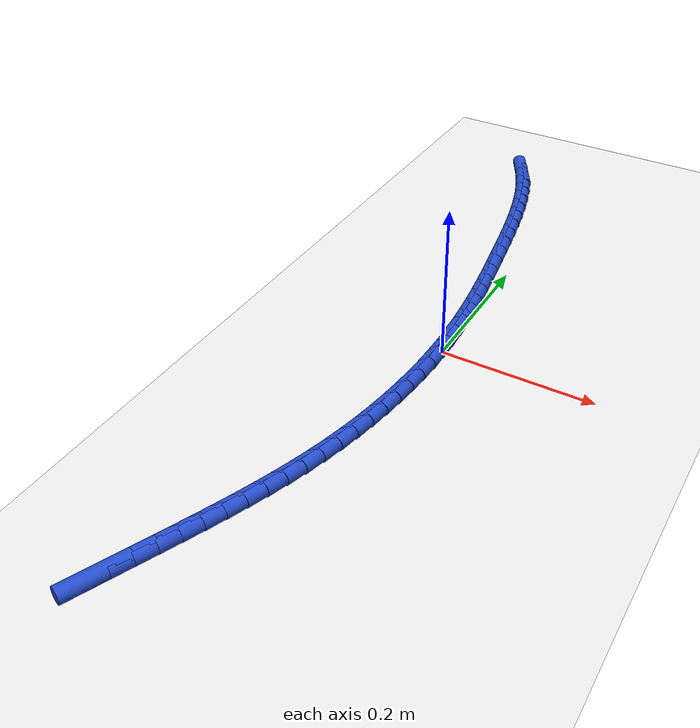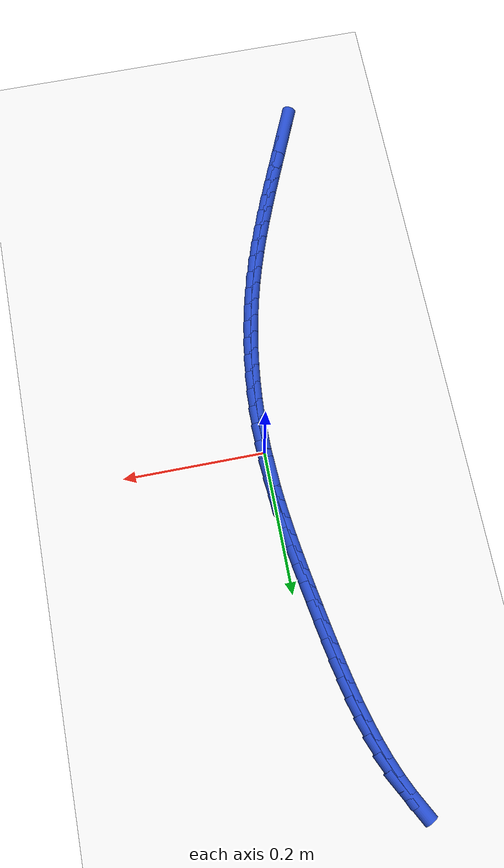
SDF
<sdf version="1.6">
 <world name="default">
  <model name="ground_plane">
   <static>1</static>
   <link name="link">
    <collision name="collision">
     <geometry><plane><normal>0 0 1</normal><size>100 100</size></plane></geometry>
     <surface><friction><ode><mu>100</mu><mu2>50</mu2></ode></friction></surface>
    </collision>
    <visual name="visual">
     <cast_shadows>0</cast_shadows>
     <geometry><plane><normal>0 0 1</normal><size>100 100</size></plane></geometry>
     <material>
      <script><uri>file://media/materials/scripts/gazebo.material</uri><name>Gazebo/WhiteGlow</name></script>
     </material>
    </visual>
   </link>
  </model>
  <model name="line">
   <link name="link_0">
    <pose>-3.469446951953614e-18 -4.163336342344337e-17 0.01 0 1.57 -1.5361704127176894</pose>
    <collision name="collision">
     <geometry><cylinder><radius>0.01</radius><length>0.08</length></cylinder></geometry>
    </collision>
    <visual name="visual">
     <material>
      <script><name>Gazebo/Blue</name><uri>file://media/materials/scripts/gazebo.material</uri></script>
     </material>
     <geometry><cylinder><radius>0.01</radius><length>0.08</length></cylinder></geometry>
    </visual>
   </link>
   <link name="link_1">
    <pose>-0.000874193337033417 0.02523670377755948 0.01 0 1.57 -1.5087189368360825</pose>
    <collision name="collision">
     <geometry><cylinder><radius>0.01</radius><length>0.08</length></cylinder></geometry>
    </collision>
    <visual name="visual">
     <material>
      <script><name>Gazebo/Blue</name><uri>file://media/materials/scripts/gazebo.material</uri></script>
     </material>
     <geometry><cylinder><radius>0.01</radius><length>0.08</length></cylinder></geometry>
    </visual>
   </link>
   <link name="link_2">
    <pose>-0.0024369470741145123 0.05037864050720676 0.01 0 1.57 -1.4840330031197346</pose>
    <collision name="collision">
     <geometry><cylinder><radius>0.01</radius><length>0.08</length></cylinder></geometry>
    </collision>
    <visual name="visual">
     <material>
      <script><name>Gazebo/Blue</name><uri>file://media/materials/scripts/gazebo.material</uri></script>
     </material>
     <geometry><cylinder><radius>0.01</radius><length>0.08</length></cylinder></geometry>
    </visual>
   </link>
   <link name="link_3">
    <pose>-0.0046185864620653435 0.07546023232954456 0.01 0 1.57 -1.4622335359305623</pose>
    <collision name="collision">
     <geometry><cylinder><radius>0.01</radius><length>0.08</length></cylinder></geometry>
    </collision>
    <visual name="visual">
     <material>
      <script><name>Gazebo/Blue</name><uri>file://media/materials/scripts/gazebo.material</uri></script>
     </material>
     <geometry><cylinder><radius>0.01</radius><length>0.08</length></cylinder></geometry>
    </visual>
   </link>
   <link name="link_4">
    <pose>-0.007349436751707944 0.10051590138517547 0.01 0 1.57 -1.443403290524753</pose>
    <collision name="collision">
     <geometry><cylinder><radius>0.01</radius><length>0.08</length></cylinder></geometry>
    </collision>
    <visual name="visual">
     <material>
      <script><name>Gazebo/Blue</name><uri>file://media/materials/scripts/gazebo.material</uri></script>
     </material>
     <geometry><cylinder><radius>0.01</radius><length>0.08</length></cylinder></geometry>
    </visual>
   </link>
   <link name="link_5">
    <pose>-0.010559823193864367 0.12558006981470227 0.01 0 1.57 -1.4275911102858279</pose>
    <collision name="collision">
     <geometry><cylinder><radius>0.01</radius><length>0.08</length></cylinder></geometry>
    </collision>
    <visual name="visual">
     <material>
      <script><name>Gazebo/Blue</name><uri>file://media/materials/scripts/gazebo.material</uri></script>
     </material>
     <geometry><cylinder><radius>0.01</radius><length>0.08</length></cylinder></geometry>
    </visual>
   </link>
   <link name="link_6">
    <pose>-0.01418007103935665 0.15068715975872754 0.01 0 1.57 -1.4148165017263807</pose>
    <collision name="collision">
     <geometry><cylinder><radius>0.01</radius><length>0.08</length></cylinder></geometry>
    </collision>
    <visual name="visual">
     <material>
      <script><name>Gazebo/Blue</name><uri>file://media/materials/scripts/gazebo.material</uri></script>
     </material>
     <geometry><cylinder><radius>0.01</radius><length>0.08</length></cylinder></geometry>
    </visual>
   </link>
   <link name="link_7">
    <pose>-0.018140505539006858 0.17587159335785418 0.01 0 1.57 -1.4050740958365386</pose>
    <collision name="collision">
     <geometry><cylinder><radius>0.01</radius><length>0.08</length></cylinder></geometry>
    </collision>
    <visual name="visual">
     <material>
      <script><name>Gazebo/Blue</name><uri>file://media/materials/scripts/gazebo.material</uri></script>
     </material>
     <geometry><cylinder><radius>0.01</radius><length>0.08</length></cylinder></geometry>
    </visual>
   </link>
   <link name="link_8">
    <pose>-0.02237145194363701 0.2011677927526846 0.01 0 1.57 -1.3983376867380366</pose>
    <collision name="collision">
     <geometry><cylinder><radius>0.01</radius><length>0.08</length></cylinder></geometry>
    </collision>
    <visual name="visual">
     <material>
      <script><name>Gazebo/Blue</name><uri>file://media/materials/scripts/gazebo.material</uri></script>
     </material>
     <geometry><cylinder><radius>0.01</radius><length>0.08</length></cylinder></geometry>
    </visual>
   </link>
   <link name="link_9">
    <pose>-0.02680323550406917 0.2266101800838217 0.01 0 1.57 -1.3943841022933288</pose>
    <collision name="collision">
     <geometry><cylinder><radius>0.01</radius><length>0.08</length></cylinder></geometry>
    </collision>
    <visual name="visual">
     <material>
      <script><name>Gazebo/Blue</name><uri>file://media/materials/scripts/gazebo.material</uri></script>
     </material>
     <geometry><cylinder><radius>0.01</radius><length>0.08</length></cylinder></geometry>
    </visual>
   </link>
   <link name="link_10">
    <pose>-0.031370356107196 0.2522299681871698 0.01 0 1.57 -1.3891127773908747</pose>
    <collision name="collision">
     <geometry><cylinder><radius>0.01</radius><length>0.08</length></cylinder></geometry>
    </collision>
    <visual name="visual">
     <material>
      <script><name>Gazebo/Blue</name><uri>file://media/materials/scripts/gazebo.material</uri></script>
     </material>
     <geometry><cylinder><radius>0.01</radius><length>0.08</length></cylinder></geometry>
    </visual>
   </link>
   <link name="link_11">
    <pose>-0.03610191483901392 0.2779856440208299 0.01 0 1.57 -1.3785036608698533</pose>
    <collision name="collision">
     <geometry><cylinder><radius>0.01</radius><length>0.08</length></cylinder></geometry>
    </collision>
    <visual name="visual">
     <material>
      <script><name>Gazebo/Blue</name><uri>file://media/materials/scripts/gazebo.material</uri></script>
     </material>
     <geometry><cylinder><radius>0.01</radius><length>0.08</length></cylinder></geometry>
    </visual>
   </link>
   <link name="link_12">
    <pose>-0.041120834252594156 0.3037635680940372 0.01 0 1.57 -1.3623242053024893</pose>
    <collision name="collision">
     <geometry><cylinder><radius>0.01</radius><length>0.08</length></cylinder></geometry>
    </collision>
    <visual name="visual">
     <material>
      <script><name>Gazebo/Blue</name><uri>file://media/materials/scripts/gazebo.material</uri></script>
     </material>
     <geometry><cylinder><radius>0.01</radius><length>0.08</length></cylinder></geometry>
    </visual>
   </link>
   <link name="link_13">
    <pose>-0.046554055587323985 0.32944701149969036 0.01 0 1.57 -1.340412642717985</pose>
    <collision name="collision">
     <geometry><cylinder><radius>0.01</radius><length>0.08</length></cylinder></geometry>
    </collision>
    <visual name="visual">
     <material>
      <script><name>Gazebo/Blue</name><uri>file://media/materials/scripts/gazebo.material</uri></script>
     </material>
     <geometry><cylinder><radius>0.01</radius><length>0.08</length></cylinder></geometry>
    </visual>
   </link>
   <link name="link_14">
    <pose>-0.05252852008259073 0.3549192453306882 0.01 0 1.57 -1.312515869545272</pose>
    <collision name="collision">
     <geometry><cylinder><radius>0.01</radius><length>0.08</length></cylinder></geometry>
    </collision>
    <visual name="visual">
     <material>
      <script><name>Gazebo/Blue</name><uri>file://media/materials/scripts/gazebo.material</uri></script>
     </material>
     <geometry><cylinder><radius>0.01</radius><length>0.08</length></cylinder></geometry>
    </visual>
   </link>
   <link name="link_15">
    <pose>-0.05917116897778162 0.380063540679929 0.01 0 1.57 -1.2783040647329198</pose>
    <collision name="collision">
     <geometry><cylinder><radius>0.01</radius><length>0.08</length></cylinder></geometry>
    </collision>
    <visual name="visual">
     <material>
      <script><name>Gazebo/Blue</name><uri>file://media/materials/scripts/gazebo.material</uri></script>
     </material>
     <geometry><cylinder><radius>0.01</radius><length>0.08</length></cylinder></geometry>
    </visual>
   </link>
   <link name="link_16">
    <pose>-0.066608943512284 0.40476316864031187 0.01 0 1.57 -1.2373929668075934</pose>
    <collision name="collision">
     <geometry><cylinder><radius>0.01</radius><length>0.08</length></cylinder></geometry>
    </collision>
    <visual name="visual">
     <material>
      <script><name>Gazebo/Blue</name><uri>file://media/materials/scripts/gazebo.material</uri></script>
     </material>
     <geometry><cylinder><radius>0.01</radius><length>0.08</length></cylinder></geometry>
    </visual>
   </link>
   <link name="link_17">
    <pose>-0.07496878492548514 0.4289014003047354 0.01 0 1.57 -1.1893787220083807</pose>
    <collision name="collision">
     <geometry><cylinder><radius>0.01</radius><length>0.08</length></cylinder></geometry>
    </collision>
    <visual name="visual">
     <material>
      <script><name>Gazebo/Blue</name><uri>file://media/materials/scripts/gazebo.material</uri></script>
     </material>
     <geometry><cylinder><radius>0.01</radius><length>0.08</length></cylinder></geometry>
    </visual>
   </link>
   <link name="link_18">
    <pose>-0.08437763445677234 0.45236150676609815 0.01 0 1.57 -1.1338909140084628</pose>
    <collision name="collision">
     <geometry><cylinder><radius>0.01</radius><length>0.08</length></cylinder></geometry>
    </collision>
    <visual name="visual">
     <material>
      <script><name>Gazebo/Blue</name><uri>file://media/materials/scripts/gazebo.material</uri></script>
     </material>
     <geometry><cylinder><radius>0.01</radius><length>0.08</length></cylinder></geometry>
    </visual>
   </link>
   <link name="link_19">
    <pose>-0.09496243334553289 0.47502675911729897 0.01 0 1.57 -1.0706686797961786</pose>
    <collision name="collision">
     <geometry><cylinder><radius>0.01</radius><length>0.08</length></cylinder></geometry>
    </collision>
    <visual name="visual">
     <material>
      <script><name>Gazebo/Blue</name><uri>file://media/materials/scripts/gazebo.material</uri></script>
     </material>
     <geometry><cylinder><radius>0.01</radius><length>0.08</length></cylinder></geometry>
    </visual>
   </link>
   <link name="link_240">
    <pose>-0.12497003850296605 -0.48889862145402285 0.01 0 1.57 1.163629836179706</pose>
    <collision name="collision">
     <geometry><cylinder><radius>0.01</radius><length>0.08</length></cylinder></geometry>
    </collision>
    <visual name="visual">
     <material>
      <script><name>Gazebo/Blue</name><uri>file://media/materials/scripts/gazebo.material</uri></script>
     </material>
     <geometry><cylinder><radius>0.01</radius><length>0.08</length></cylinder></geometry>
    </visual>
   </link>
   <link name="link_241">
    <pose>-0.11460946719175062 -0.46487503120927476 0.01 0 1.57 1.1633577005371856</pose>
    <collision name="collision">
     <geometry><cylinder><radius>0.01</radius><length>0.08</length></cylinder></geometry>
    </collision>
    <visual name="visual">
     <material>
      <script><name>Gazebo/Blue</name><uri>file://media/materials/scripts/gazebo.material</uri></script>
     </material>
     <geometry><cylinder><radius>0.01</radius><length>0.08</length></cylinder></geometry>
    </visual>
   </link>
   <link name="link_242">
    <pose>-0.10432391124441635 -0.44104322024718645 0.01 0 1.57 1.1651142500305276</pose>
    <collision name="collision">
     <geometry><cylinder><radius>0.01</radius><length>0.08</length></cylinder></geometry>
    </collision>
    <visual name="visual">
     <material>
      <script><name>Gazebo/Blue</name><uri>file://media/materials/scripts/gazebo.material</uri></script>
     </material>
     <geometry><cylinder><radius>0.01</radius><length>0.08</length></cylinder></geometry>
    </visual>
   </link>
   <link name="link_243">
    <pose>-0.09415890964401324 -0.41737655808248947 0.01 0 1.57 1.1703779267807102</pose>
    <collision name="collision">
     <geometry><cylinder><radius>0.01</radius><length>0.08</length></cylinder></geometry>
    </collision>
    <visual name="visual">
     <material>
      <script><name>Gazebo/Blue</name><uri>file://media/materials/scripts/gazebo.material</uri></script>
     </material>
     <geometry><cylinder><radius>0.01</radius><length>0.08</length></cylinder></geometry>
    </visual>
   </link>
   <link name="link_244">
    <pose>-0.08418693330879268 -0.3938181020213314 0.01 0 1.57 1.1792058666494885</pose>
    <collision name="collision">
     <geometry><cylinder><radius>0.01</radius><length>0.08</length></cylinder></geometry>
    </collision>
    <visual name="visual">
     <material>
      <script><name>Gazebo/Blue</name><uri>file://media/materials/scripts/gazebo.material</uri></script>
     </material>
     <geometry><cylinder><radius>0.01</radius><length>0.08</length></cylinder></geometry>
    </visual>
   </link>
   <link name="link_245">
    <pose>-0.07448045316375701 -0.3703109093622605 0.01 0 1.57 1.191633873342598</pose>
    <collision name="collision">
     <geometry><cylinder><radius>0.01</radius><length>0.08</length></cylinder></geometry>
    </collision>
    <visual name="visual">
     <material>
      <script><name>Gazebo/Blue</name><uri>file://media/materials/scripts/gazebo.material</uri></script>
     </material>
     <geometry><cylinder><radius>0.01</radius><length>0.08</length></cylinder></geometry>
    </visual>
   </link>
   <link name="link_246">
    <pose>-0.06511194013390936 -0.34679803740382753 0.01 0 1.57 1.207672027182049</pose>
    <collision name="collision">
     <geometry><cylinder><radius>0.01</radius><length>0.08</length></cylinder></geometry>
    </collision>
    <visual name="visual">
     <material>
      <script><name>Gazebo/Blue</name><uri>file://media/materials/scripts/gazebo.material</uri></script>
     </material>
     <geometry><cylinder><radius>0.01</radius><length>0.08</length></cylinder></geometry>
    </visual>
   </link>
   <link name="link_247">
    <pose>-0.056153865144251955 -0.32322254344458035 0.01 0 1.57 1.2272991763388337</pose>
    <collision name="collision">
     <geometry><cylinder><radius>0.01</radius><length>0.08</length></cylinder></geometry>
    </collision>
    <visual name="visual">
     <material>
      <script><name>Gazebo/Blue</name><uri>file://media/materials/scripts/gazebo.material</uri></script>
     </material>
     <geometry><cylinder><radius>0.01</radius><length>0.08</length></cylinder></geometry>
    </visual>
   </link>
   <link name="link_248">
    <pose>-0.04767869911978744 -0.2995274847830684 0.01 0 1.57 1.2504565766414821</pose>
    <collision name="collision">
     <geometry><cylinder><radius>0.01</radius><length>0.08</length></cylinder></geometry>
    </collision>
    <visual name="visual">
     <material>
      <script><name>Gazebo/Blue</name><uri>file://media/materials/scripts/gazebo.material</uri></script>
     </material>
     <geometry><cylinder><radius>0.01</radius><length>0.08</length></cylinder></geometry>
    </visual>
   </link>
   <link name="link_249">
    <pose>-0.03975891298551831 -0.2756559187178405 0.01 0 1.57 1.2770411529640404</pose>
    <collision name="collision">
     <geometry><cylinder><radius>0.01</radius><length>0.08</length></cylinder></geometry>
    </collision>
    <visual name="visual">
     <material>
      <script><name>Gazebo/Blue</name><uri>file://media/materials/scripts/gazebo.material</uri></script>
     </material>
     <geometry><cylinder><radius>0.01</radius><length>0.08</length></cylinder></geometry>
    </visual>
   </link>
   <link name="link_250">
    <pose>-0.03246697766644719 -0.2515509025474457 0.01 0 1.57 1.30682228114868</pose>
    <collision name="collision">
     <geometry><cylinder><radius>0.01</radius><length>0.08</length></cylinder></geometry>
    </collision>
    <visual name="visual">
     <material>
      <script><name>Gazebo/Blue</name><uri>file://media/materials/scripts/gazebo.material</uri></script>
     </material>
     <geometry><cylinder><radius>0.01</radius><length>0.08</length></cylinder></geometry>
    </visual>
   </link>
   <link name="link_251">
    <pose>-0.025873928995998472 -0.22715762213574994 0.01 0 1.57 1.337863963875585</pose>
    <collision name="collision">
     <geometry><cylinder><radius>0.01</radius><length>0.08</length></cylinder></geometry>
    </collision>
    <visual name="visual">
     <material>
      <script><name>Gazebo/Blue</name><uri>file://media/materials/scripts/gazebo.material</uri></script>
     </material>
     <geometry><cylinder><radius>0.01</radius><length>0.08</length></cylinder></geometry>
    </visual>
   </link>
   <link name="link_252">
    <pose>-0.020017298725252212 -0.2024709574767561 0.01 0 1.57 1.3684139632039762</pose>
    <collision name="collision">
     <geometry><cylinder><radius>0.01</radius><length>0.08</length></cylinder></geometry>
    </collision>
    <visual name="visual">
     <material>
      <script><name>Gazebo/Blue</name><uri>file://media/materials/scripts/gazebo.material</uri></script>
     </material>
     <geometry><cylinder><radius>0.01</radius><length>0.08</length></cylinder></geometry>
    </visual>
   </link>
   <link name="link_253">
    <pose>-0.014900836077009944 -0.1775358956928917 0.01 0 1.57 1.398508473908233</pose>
    <collision name="collision">
     <geometry><cylinder><radius>0.01</radius><length>0.08</length></cylinder></geometry>
    </collision>
    <visual name="visual">
     <material>
      <script><name>Gazebo/Blue</name><uri>file://media/materials/scripts/gazebo.material</uri></script>
     </material>
     <geometry><cylinder><radius>0.01</radius><length>0.08</length></cylinder></geometry>
    </visual>
   </link>
   <link name="link_254">
    <pose>-0.01052679949211172 -0.15239963507332924 0.01 0 1.57 1.4282615957228812</pose>
    <collision name="collision">
     <geometry><cylinder><radius>0.01</radius><length>0.08</length></cylinder></geometry>
    </collision>
    <visual name="visual">
     <material>
      <script><name>Gazebo/Blue</name><uri>file://media/materials/scripts/gazebo.material</uri></script>
     </material>
     <geometry><cylinder><radius>0.01</radius><length>0.08</length></cylinder></geometry>
    </visual>
   </link>
   <link name="link_255">
    <pose>-0.006897447411397766 -0.12710937390724208 0.01 0 1.57 1.4577860975338002</pose>
    <collision name="collision">
     <geometry><cylinder><radius>0.01</radius><length>0.08</length></cylinder></geometry>
    </collision>
    <visual name="visual">
     <material>
      <script><name>Gazebo/Blue</name><uri>file://media/materials/scripts/gazebo.material</uri></script>
     </material>
     <geometry><cylinder><radius>0.01</radius><length>0.08</length></cylinder></geometry>
    </visual>
   </link>
   <link name="link_256">
    <pose>-0.004015038275708312 -0.10171231048380351 0.01 0 1.57 1.4871940432069612</pose>
    <collision name="collision">
     <geometry><cylinder><radius>0.01</radius><length>0.08</length></cylinder></geometry>
    </collision>
    <visual name="visual">
     <material>
      <script><name>Gazebo/Blue</name><uri>file://media/materials/scripts/gazebo.material</uri></script>
     </material>
     <geometry><cylinder><radius>0.01</radius><length>0.08</length></cylinder></geometry>
    </visual>
   </link>
   <link name="link_257">
    <pose>-0.001881830525883582 -0.07625564309218676 0.01 0 1.57 1.5165974682318624</pose>
    <collision name="collision">
     <geometry><cylinder><radius>0.01</radius><length>0.08</length></cylinder></geometry>
    </collision>
    <visual name="visual">
     <material>
      <script><name>Gazebo/Blue</name><uri>file://media/materials/scripts/gazebo.material</uri></script>
     </material>
     <geometry><cylinder><radius>0.01</radius><length>0.08</length></cylinder></geometry>
    </visual>
   </link>
   <link name="link_258">
    <pose>-0.0005000826027638039 -0.05078657002156504 0.01 0 1.57 1.5461090915834994</pose>
    <collision name="collision">
     <geometry><cylinder><radius>0.01</radius><length>0.08</length></cylinder></geometry>
    </collision>
    <visual name="visual">
     <material>
      <script><name>Gazebo/Blue</name><uri>file://media/materials/scripts/gazebo.material</uri></script>
     </material>
     <geometry><cylinder><radius>0.01</radius><length>0.08</length></cylinder></geometry>
    </visual>
   </link>
   <link name="link_259">
    <pose>0.00012794705281079675 -0.025352289561111716 0.01 0 1.57 -1.5657496044365322</pose>
    <collision name="collision">
     <geometry><cylinder><radius>0.01</radius><length>0.08</length></cylinder></geometry>
    </collision>
    <visual name="visual">
     <material>
      <script><name>Gazebo/Blue</name><uri>file://media/materials/scripts/gazebo.material</uri></script>
     </material>
     <geometry><cylinder><radius>0.01</radius><length>0.08</length></cylinder></geometry>
    </visual>
   </link>
   <link name="link_260">
    <pose>-9.540979117872439e-18 -3.469446951953614e-17 0.01 0 1.57 -1.5356770183022013</pose>
    <collision name="collision">
     <geometry><cylinder><radius>0.01</radius><length>0.08</length></cylinder></geometry>
    </collision>
    <visual name="visual">
     <material>
      <script><name>Gazebo/Blue</name><uri>file://media/materials/scripts/gazebo.material</uri></script>
     </material>
     <geometry><cylinder><radius>0.01</radius><length>0.08</length></cylinder></geometry>
    </visual>
   </link>
   <link name="link_261">
    <pose>-0.0008861822020364519 0.025223100372596747 0.01 0 1.57 -1.5051466162645328</pose>
    <collision name="collision">
     <geometry><cylinder><radius>0.01</radius><length>0.08</length></cylinder></geometry>
    </collision>
    <visual name="visual">
     <material>
      <script><name>Gazebo/Blue</name><uri>file://media/materials/scripts/gazebo.material</uri></script>
     </material>
     <geometry><cylinder><radius>0.01</radius><length>0.08</length></cylinder></geometry>
    </visual>
   </link>
   <link name="link_262">
    <pose>-0.0025328579941387517 0.050269813267505334 0.01 0 1.57 -1.5204536316344022</pose>
    <collision name="collision">
     <geometry><cylinder><radius>0.01</radius><length>0.08</length></cylinder></geometry>
    </collision>
    <visual name="visual">
     <material>
      <script><name>Gazebo/Blue</name><uri>file://media/materials/scripts/gazebo.material</uri></script>
     </material>
     <geometry><cylinder><radius>0.01</radius><length>0.08</length></cylinder></geometry>
    </visual>
   </link>
  </model>
 </world>
</sdf>
